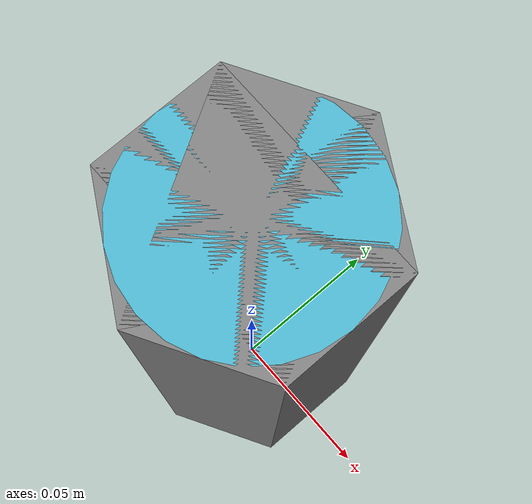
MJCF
<mujoco model="bottle">
  <asset>
    <texture type="2d" name="bottle_tex" builtin="flat" rgb1="0.3 0.7 0.8" width="512" height="512"/>
    <material name="bottle_mat" texture="bottle_tex" texuniform="true" reflectance="0.1"/>
  </asset>
  <worldbody>
    <body>
      <body name="object">
        <geom pos="0 0 0.075" size="0.03 0.075" type="cylinder" material="bottle_mat" group="1" conaffinity="0" contype="0"/>
        <geom type="box" pos="0 0 0.075" size="0.03 0.01732050807568877 0.075" quat="1.0 0.0 0.0 0.0" solimp="0.998 0.998 0.001" solref="0.001 2" density="100" friction="0.95 0.3 0.1" group="0"/>
        <geom type="box" pos="0 0 0.075" size="0.03 0.01732050807568877 0.075" quat="0.8660254037844387 0.0 0.0 0.49999999999999994" solimp="0.998 0.998 0.001" solref="0.001 2" density="100" friction="0.95 0.3 0.1" group="0"/>
        <geom type="box" pos="0 0 0.075" size="0.03 0.01732050807568877 0.075" quat="0.5000000000000001 0.0 0.0 0.8660254037844386" solimp="0.998 0.998 0.001" solref="0.001 2" density="100" friction="0.95 0.3 0.1" group="0"/>
      </body>
      <site rgba="0 0 0 0" size="0.005" pos="0 0 0" name="bottom_site"/>
      <site rgba="0 0 0 0" size="0.005" pos="0 0 0.15" name="top_site"/>
      <site rgba="0 0 0 0" size="0.005" pos="0.03 0.03 0.075" name="horizontal_radius_site"/>
    </body>
  </worldbody>
</mujoco>
